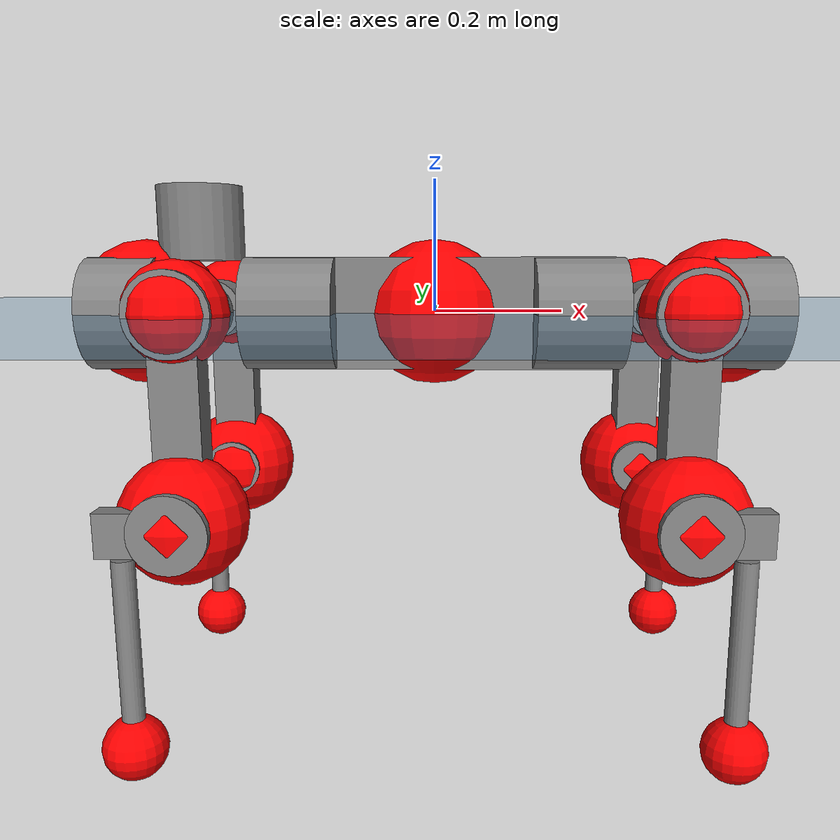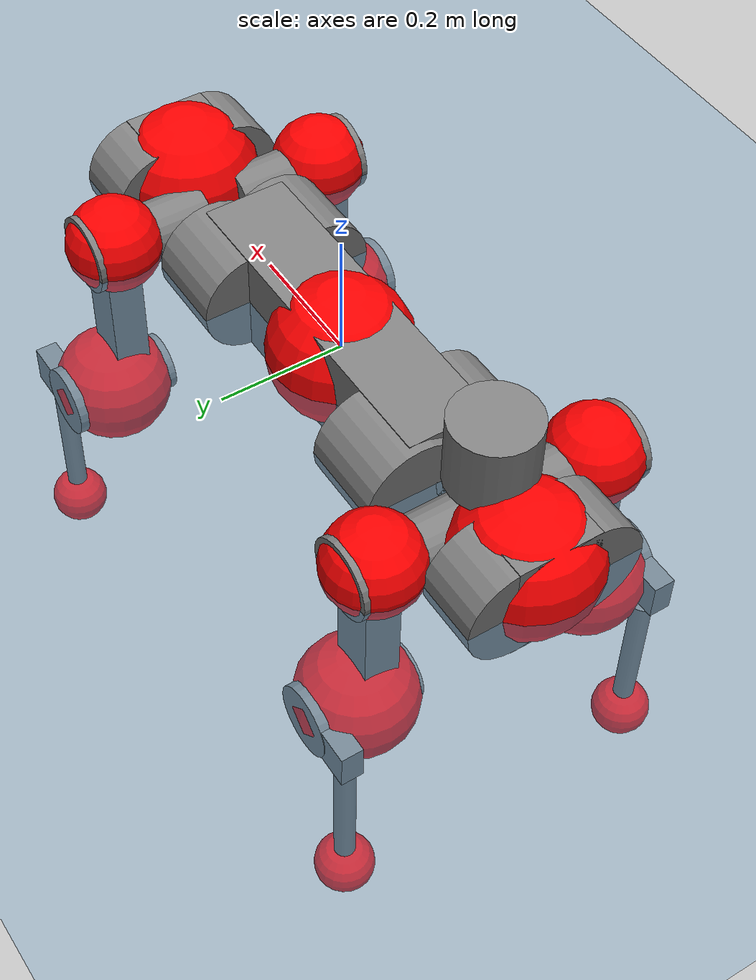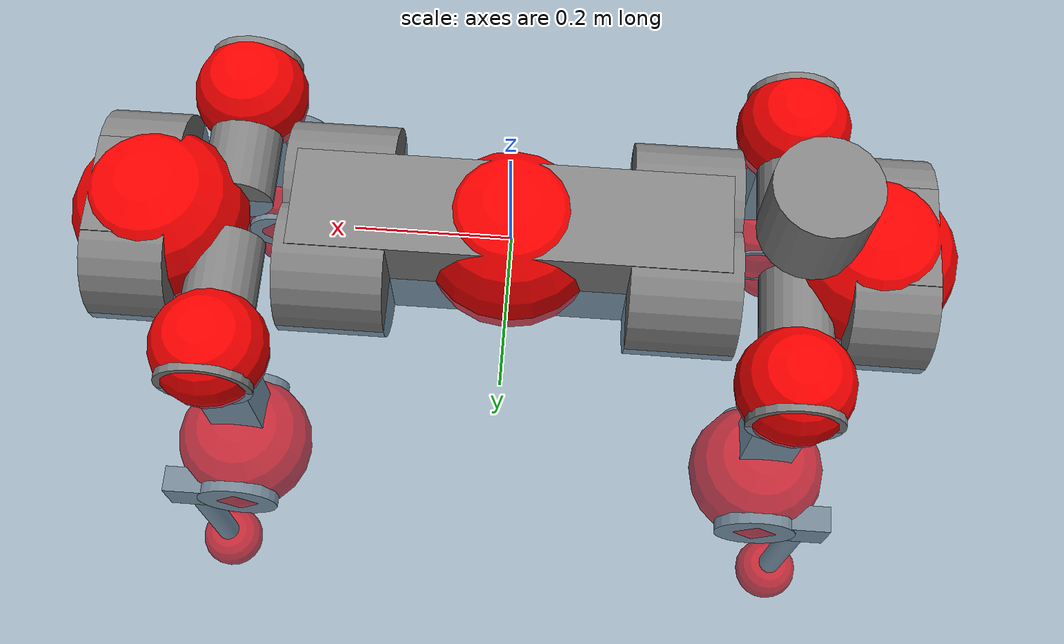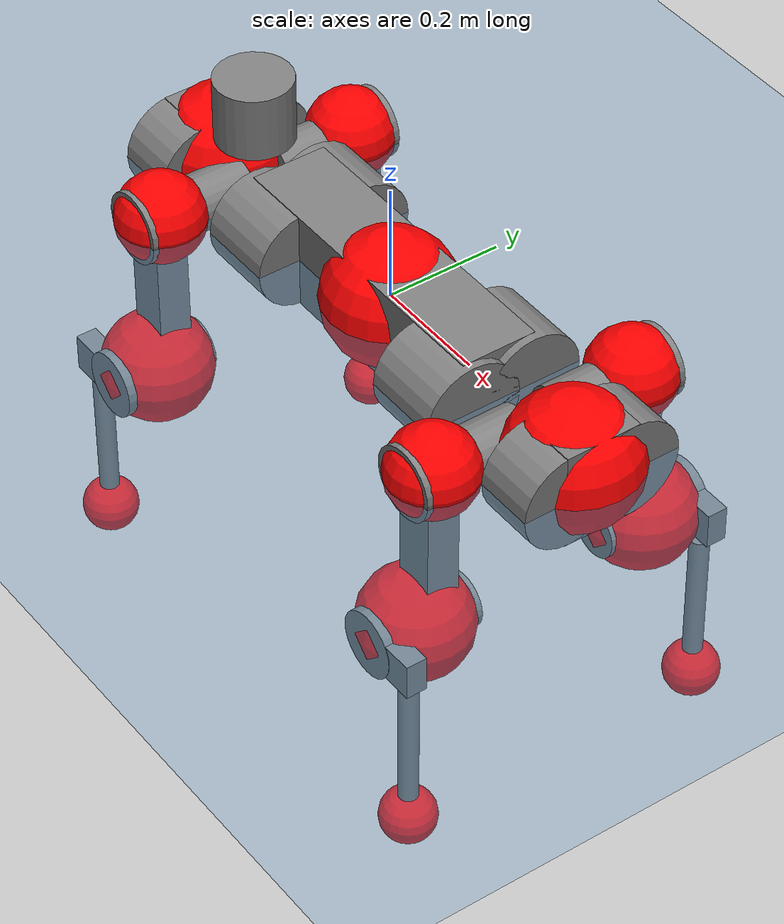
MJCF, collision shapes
<mujoco model="anymal_c">
  <compiler angle="radian" assetdir="assets" balanceinertia="true" inertiafromgeom="false"/>

  <option timestep="0.005" density="1.2" viscosity="2e-05"/>

  <size nkey="1"/>

  <visual>
    <quality shadowsize="8192"/>
    <map shadowclip="0.5"/>
  </visual>

  <default>
    <default class="/">
      <material specular="0" shininess="0.25"/>
      <geom contype="0" conaffinity="0" group="1" solref="-1000 -80"/>
      <site size="0.01 0.005 0.005" group="5"/>
      <general forcelimited="true" forcerange="-80 80" biastype="affine" gainprm="80" biasprm="0 -80 -2"/>
      <default class="anymal_c">
        <joint armature="0.01" damping="0.01" frictionloss="0.1"/>
        <default class="visual">
          <geom type="mesh" group="2"/>
          <default class="visual_zflip"/>
        </default>
        <default class="collision">
          <geom type="cylinder" group="3"/>
          <default class="foot">
            <geom size="0.03 0 0" type="sphere" condim="6" priority="1" friction="0.8 0.02 0.01" solimp="0.015 1 0.03"/>
          </default>
        </default>
      </default>
      <default class="reward_collision_sphere">
        <geom group="5" rgba="1 0 0 1"/>
      </default>
    </default>
  </default>

  <asset>
    <texture type="skybox" colorspace="auto" name="//unnamed_texture_0" builtin="gradient" rgb1="0.95 0.95 0.95" rgb2="0.95 0.95 0.95" width="100" height="600"/>
    <texture type="2d" colorspace="auto" name="texplane" builtin="checker" rgb1="0.345 0.575 0.748" rgb2="0.345 0.575 0.748" markrgb="1 1 1" width="512" height="512"/>
    <texture type="2d" colorspace="linear" name="base" file="base.png"/>
    <texture type="2d" colorspace="linear" name="top_shell" file="top_shell.png"/>
    <texture type="2d" colorspace="linear" name="bottom_shell" file="bottom_shell.png"/>
    <texture type="2d" colorspace="linear" name="remote" file="remote.png"/>
    <texture type="2d" colorspace="linear" name="hatch" file="hatch.png"/>
    <texture type="2d" colorspace="linear" name="handle" file="handle.png"/>
    <texture type="2d" colorspace="linear" name="face" file="face.png"/>
    <texture type="2d" colorspace="linear" name="battery" file="battery.png"/>
    <texture type="2d" colorspace="linear" name="lidar_cage" file="lidar_cage.png"/>
    <texture type="2d" colorspace="linear" name="depth_camera" file="depth_camera.png"/>
    <texture type="2d" colorspace="linear" name="wide_angle_camera" file="wide_angle_camera.png"/>
    <texture type="2d" colorspace="linear" name="lidar" file="lidar.png"/>
    <texture type="2d" colorspace="linear" name="drive" file="drive.png"/>
    <texture type="2d" colorspace="linear" name="hip_l" file="hip_l.png"/>
    <texture type="2d" colorspace="linear" name="shank_l" file="shank_l.png"/>
    <texture type="2d" colorspace="linear" name="foot" file="foot.png"/>
    <texture type="2d" colorspace="linear" name="thigh" file="thigh.png"/>
    <texture type="2d" colorspace="linear" name="shank_r" file="shank_r.png"/>
    <texture type="2d" colorspace="linear" name="hip_r" file="hip_r.png"/>
    <material name="MatPlane" class="/" texture="texplane" texuniform="true" texrepeat="2 2" specular="0.9" shininess="0.5"/>
    <material name="black_plastic" class="/" rgba="0.007 0.007 0.007 1"/>
    <material name="green" class="/" rgba="0.052 0.178 0.033 1"/>
    <material name="red" class="/" rgba="0.178 0.006 0.005 1"/>
    <material name="yellow" class="/" rgba="0.178 0.119 0.006 1"/>
    <material name="lwl" class="/" rgba="0.8 0.8 0.8 1"/>
    <material name="base" class="/" texture="base"/>
    <material name="top_shell" class="/" texture="top_shell"/>
    <material name="bottom_shell" class="/" texture="bottom_shell"/>
    <material name="hip_l" class="/" texture="hip_l"/>
    <material name="thigh" class="/" texture="thigh"/>
    <material name="shank_l" class="/" texture="shank_l"/>
    <material name="foot" class="/" texture="foot"/>
    <material name="hip_r" class="/" texture="hip_r"/>
    <material name="shank" class="/" texture="shank_r"/>
    <material name="hatch" class="/" texture="hatch"/>
    <material name="remote" class="/" texture="remote"/>
    <material name="handle" class="/" texture="handle"/>
    <material name="face" class="/" texture="face"/>
    <material name="depth_camera" class="/" texture="depth_camera"/>
    <material name="wide_angle_camera" class="/" texture="wide_angle_camera"/>
    <material name="battery" class="/" texture="battery"/>
    <material name="lidar_cage" class="/" texture="lidar_cage"/>
    <material name="lidar" class="/" texture="lidar"/>
    <material name="drive" class="/" texture="drive"/>
    <mesh name="base_0" class="/" file="base_0.obj"/>
    <mesh name="base_1" class="/" file="base_1.obj"/>
    <mesh name="base_2" class="/" file="base_2.obj"/>
    <mesh name="base_3" class="/" file="base_3.obj"/>
    <mesh name="base_4" class="/" file="base_4.obj"/>
    <mesh name="base_5" class="/" file="base_5.obj"/>
    <mesh name="top_shell" class="/" file="top_shell.obj"/>
    <mesh name="bottom_shell" class="/" file="bottom_shell.obj"/>
    <mesh name="remote" class="/" file="remote.obj"/>
    <mesh name="handle" class="/" file="handle.obj"/>
    <mesh name="face" class="/" file="face.obj"/>
    <mesh name="wide_angle_camera" class="/" file="wide_angle_camera.obj"/>
    <mesh name="depth_camera" class="/" file="depth_camera.obj"/>
    <mesh name="battery" class="/" file="battery.obj"/>
    <mesh name="lidar_cage" class="/" file="lidar_cage.obj"/>
    <mesh name="lidar" class="/" file="lidar.obj"/>
    <mesh name="drive" class="/" file="drive.obj"/>
    <mesh name="hip_l" class="/" file="hip_l.obj"/>
    <mesh name="thigh" class="/" file="thigh.obj"/>
    <mesh name="shank_l" class="/" file="shank_l.obj"/>
    <mesh name="foot" class="/" file="foot.obj"/>
    <mesh name="hip_r" class="/" file="hip_r.obj"/>
    <mesh name="hatch" class="/" file="hatch.obj"/>
    <mesh name="shank_r" class="/" file="shank_r.obj"/>
  </asset>

  <worldbody>
    <geom name="floor" class="/" size="100 100 0.125" type="plane" group="0" material="MatPlane"/>
    <light name="toplight_shadow" class="/" pos="0 0 5" dir="0.0990148 0.0990148 -0.990148" type="directional" ambient="0.04 0.04 0.04" diffuse="0.55 0.55 0.55" specular="0.12 0.12 0.12"/>
    <light name="toplight_fill" class="/" pos="0 0 5" dir="0.0990148 0.0990148 -0.990148" type="directional" castshadow="false" ambient="0.04 0.04 0.04" diffuse="0.3 0.3 0.3" specular="0.08 0.08 0.08"/>
    <body name="trunk" childclass="anymal_c" pos="-0.000361323 0.000201155 -0.00224797" quat="1 0.000294646 -0.000118568 7.80357e-05">
      <inertial pos="-0.000287553 -0.00292765 0.0499187" quat="0.501477 0.498128 0.500694 0.499695" mass="15.9349" diaginertia="0.668155 0.205484 0.250764"/>
      <joint name="//unnamed_joint_0" type="free" armature="0" damping="0" frictionloss="0"/>
      <geom name="//unnamed_geom_1" class="visual" material="green" mesh="base_0"/>
      <geom name="//unnamed_geom_2" class="visual" material="yellow" mesh="base_1"/>
      <geom name="//unnamed_geom_3" class="visual" material="red" mesh="base_2"/>
      <geom name="//unnamed_geom_4" class="visual" material="black_plastic" mesh="base_3"/>
      <geom name="//unnamed_geom_5" class="visual" material="lwl" mesh="base_4"/>
      <geom name="//unnamed_geom_6" class="visual" material="base" mesh="base_5"/>
      <geom name="trunk_1" class="collision" size="0.272447 0.065763 0.0845525" type="box"/>
      <geom name="trunk_2" class="collision" size="0.0845525 0.0681117" pos="0.218144 0.0557141 0" quat="0.707107 0 0.707107 0"/>
      <geom name="trunk_3" class="collision" size="0.0845525 0.0681117" pos="-0.218144 0.0557141 0" quat="0.707107 0 0.707107 0"/>
      <geom name="trunk_4" class="collision" size="0.0845525 0.0681117" pos="0.218144 -0.0557141 0" quat="0.707107 0 0.707107 0"/>
      <geom name="trunk_5" class="collision" size="0.0845525 0.0681117" pos="-0.218144 -0.0557141 0" quat="0.707107 0 0.707107 0"/>
      <geom name="//unnamed_geom_12" class="visual" material="top_shell" mesh="top_shell"/>
      <geom name="//unnamed_geom_13" class="visual" material="bottom_shell" mesh="bottom_shell"/>
      <geom name="//unnamed_geom_14" class="visual" material="remote" mesh="remote"/>
      <geom name="//unnamed_geom_15" class="visual" material="handle" mesh="handle"/>
      <geom name="//unnamed_geom_16" class="visual" pos="0.415727 0 0" quat="1 0 0 0" material="face" mesh="face"/>
      <geom name="trunk_6" class="collision" size="0.0516709 0.065763 0.0845525" pos="0.47089 0 0" type="box"/>
      <geom name="//unnamed_geom_18" class="collision" size="0.0845525 0.0516709" pos="0.47089 0.0557141 0" quat="0.707107 0 0.707107 0"/>
      <geom name="//unnamed_geom_19" class="collision" size="0.0845525 0.0516709" pos="0.47089 -0.0557141 0" quat="0.707107 0 0.707107 0"/>
      <geom name="//unnamed_geom_20" class="visual" pos="0.463018 0 -0.0298965" quat="0.965926 0 0.258819 0" material="depth_camera" mesh="depth_camera"/>
      <geom name="//unnamed_geom_21" class="visual" pos="0.514519 0 0.0152625" material="wide_angle_camera" mesh="wide_angle_camera"/>
      <geom name="//unnamed_geom_22" class="visual_zflip" pos="-0.415727 0 0" quat="0 0 0 1" material="face" mesh="face"/>
      <geom name="trunk_7" class="collision" size="0.0516709 0.065763 0.0845525" pos="-0.47089 0 0" quat="0 0 0 1" type="box"/>
      <geom name="//unnamed_geom_24" class="collision" size="0.0845525 0.0516709" pos="-0.47089 -0.0557141 0" quat="0 -0.707107 0 0.707107"/>
      <geom name="//unnamed_geom_25" class="collision" size="0.0845525 0.0516709" pos="-0.47089 0.0557141 0" quat="0 -0.707107 0 0.707107"/>
      <geom name="//unnamed_geom_26" class="visual" pos="-0.463018 0 -0.0298965" quat="0 -0.258819 0 0.965926" material="depth_camera" mesh="depth_camera"/>
      <geom name="//unnamed_geom_27" class="visual_zflip" pos="-0.514519 0 0.0152625" quat="0 0 0 1" material="wide_angle_camera" mesh="wide_angle_camera"/>
      <geom name="//unnamed_geom_28" class="visual" material="battery" mesh="battery"/>
      <geom name="//unnamed_geom_29" class="visual" pos="0 0.0581396 0.0294916" quat="0.683013 -0.183013 0.183013 0.683013" material="depth_camera" mesh="depth_camera"/>
      <geom name="//unnamed_geom_30" class="visual" pos="0 -0.0581396 0.0294916" quat="0.683013 0.183013 0.183013 -0.683013" material="depth_camera" mesh="depth_camera"/>
      <geom name="//unnamed_geom_31" class="visual" pos="-0.365078 0 0.0749361" quat="1 0 0 0" material="lidar_cage" mesh="lidar_cage"/>
      <geom name="trunk_8" class="collision" size="0.065763 0.0563683" pos="-0.365078 0 0.136108"/>
      <geom name="//unnamed_geom_33" class="visual" pos="-0.365078 -8.13423e-05 0.144978" quat="0.707107 0 0 -0.707107" material="lidar" mesh="lidar"/>
      <geom name="//unnamed_geom_34" class="visual" pos="0.300788 0.0828547 -3.8575e-09" quat="0.258819 0.965926 0 0" material="drive" mesh="drive"/>
      <geom name="//unnamed_geom_35" class="visual" pos="0.300788 -0.0828547 3.8575e-09" quat="0.258819 -0.965926 0 0" material="drive" mesh="drive"/>
      <geom name="//unnamed_geom_36" class="visual" pos="-0.300788 0.0828547 3.8575e-09" quat="0 0 0.965926 -0.258819" material="drive" mesh="drive"/>
      <geom name="//unnamed_geom_37" class="visual" pos="-0.300788 -0.0828547 -3.8575e-09" quat="0 0 -0.965926 -0.258819" material="drive" mesh="drive"/>
      <geom name="//unnamed_geom_38" class="visual" pos="0.116343 0 0.0744263" quat="1 0 0 0" material="hatch" mesh="hatch"/>
      <geom name="//unnamed_geom_39" class="reward_collision_sphere" size="0.112737"/>
      <geom name="//unnamed_geom_40" class="reward_collision_sphere" size="0.112737" pos="0.451332 0 0"/>
      <geom name="//unnamed_geom_41" class="reward_collision_sphere" size="0.112737" pos="-0.451332 0 0"/>
      <site name="imu" pos="0.236773 0.0112047 0.0609796" size="0.00939472"/>
      <camera name="track" pos="0 -1.59183 0" quat="0.707107 0.707107 0 0" mode="trackcom"/>
      <camera name="ego_camera" pos="0.451332 0 -0.0407815" quat="-0.5 -0.5 0.5 0.5"/>
      <body name="LF_HIP" pos="0.300301 0.0839842 0.00106311" quat="0.25851 0.966009 -0.000347245 0.000356866">
        <inertial pos="0.0596252 -0.0128903 -0.00817639" quat="-0.135797 0.708284 -0.132387 0.679976" mass="2.21506" diaginertia="0.00571197 0.00155633 0.00358993"/>
        <joint name="LF_HAA" pos="0 0 0" axis="0.999881 0.013529 0.00739037" range="-0.718405 0.514598" armature="0.0106557" damping="0" frictionloss="0.0989977"/>
        <geom name="//unnamed_geom_42" class="visual" pos="0 -0.000226919 3.72713e-05" quat="0.258819 -0.965926 0 0" material="hip_l" mesh="hip_l"/>
        <geom name="//unnamed_geom_43" class="visual" pos="0.0600774 -0.0701499 -0.0421551" quat="0.183013 -0.683013 0.683013 0.183013" material="drive" mesh="drive"/>
        <geom name="//unnamed_geom_44" class="collision" size="0.0469736 0.065763" pos="0.0600774 -0.009519 -0.00703991" quat="-0.353553 -0.612372 0.612372 -0.353553"/>
        <body name="LF_THIGH" pos="0.0601679 -0.0569622 -0.044403" quat="0.183194 -0.682913 0.683103 0.182866">
          <inertial pos="0.031876 3.97039e-05 -0.247708" quat="0.993297 -0.00819412 -0.0786408 0.0843217" mass="2.60613" diaginertia="0.0296805 0.00954989 0.0046771"/>
          <joint name="LF_HFE" pos="0 0 0" axis="0.999878 -0.00213592 0.0154583" range="-3.1292 3.11581" armature="0.00894906" damping="0.0116316" frictionloss="0.0810398"/>
          <geom name="//unnamed_geom_45" class="visual" pos="0.00411938 6.49117e-06 0" quat="0.707107 0 0 -0.707107" material="thigh" mesh="thigh"/>
          <geom name="//unnamed_geom_46" class="collision" size="0.0610657 0.0375789" pos="0.0401184 0 0" quat="0.5 0.5 -0.5 -0.5"/>
          <geom name="//unnamed_geom_47" class="collision" size="0.0352302 0.0281842 0.132761" pos="0.0300888 0 -0.144075" quat="0.707107 0 0 -0.707107" type="box"/>
          <geom name="//unnamed_geom_48" class="visual" pos="0.100597 0 -0.290568" quat="1 0 0 0" material="drive" mesh="drive"/>
          <geom name="//unnamed_geom_49" class="collision" size="0.0469736 0.065763" pos="0.0303897 0 -0.290568" quat="0.707107 0 0.707107 0"/>
          <geom name="//unnamed_geom_50" class="reward_collision_sphere" size="0.0751577" pos="0.025074 0 0"/>
          <body name="LF_SHANK" pos="0.103805 -0.00323506 -0.293371" quat="0.999999 -0.000281217 -0.00124957 0.000516847">
            <inertial pos="0.00644986 -0.0485915 -0.0813836" quat="0.993015 -0.115421 -0.00500179 -0.0239546" mass="0.476994" diaginertia="0.0101189 0.00293319 0.00122733"/>
            <joint name="LF_KFE" pos="0 0 0" axis="1 -0.000365009 -2.30143e-05" range="-3.18309 3.14022" armature="0.00994867" damping="0" frictionloss="0.102945"/>
            <geom name="//unnamed_geom_51" class="visual" pos="0.00134324 0.00716222 0" quat="0.707107 0 0 -0.707107" material="shank_l" mesh="shank_l"/>
            <geom name="LF_kfe_act" class="collision" size="0.0563683 0.0187894" pos="0.0200592 0 0" quat="0.5 0.5 -0.5 -0.5"/>
            <geom name="//unnamed_geom_53" class="collision" size="0.0540187 0.0317072 0.01785" pos="0.0200592 -0.0457644 0" quat="0.5 0.5 -0.5 -0.5" type="box"/>
            <geom name="//unnamed_geom_54" class="visual" pos="0.0130883 -0.0676927 -0.344573" quat="0.382683 0 0 -0.92388" material="foot" mesh="foot"/>
            <geom name="LF_calf" class="collision" size="0.0164408 0.132702" pos="0.0130886 -0.0700008 -0.172287" quat="0.707107 0 0 -0.707107"/>
            <geom name="LF_foot" class="foot" size="0.0297555" pos="0.0130886 -0.0700008 -0.321634" quat="0.707107 0 0 -0.707107"/>
            <geom name="//unnamed_geom_57" class="reward_collision_sphere" size="0.0939472" pos="-0.050148 0 0"/>
            <geom name="//unnamed_geom_58" class="reward_collision_sphere" size="0.0469736" pos="0.0130886 -0.0700008 -0.321634"/>
            <site name="LF_foot" class="foot" pos="0.0130886 -0.0700008 -0.321634" quat="0.707107 0 0 -0.707107" size="0.00939472"/>
          </body>
        </body>
      </body>
      <body name="RF_HIP" pos="0.299615 -0.084248 -0.000313339" quat="0.258872 -0.965912 -8.64658e-06 -0.000151352">
        <inertial pos="0.059693 0.0131832 -0.00883808" quat="0.136117 0.67891 0.12619 0.710373" mass="2.38496" diaginertia="0.00603779 0.00163862 0.00371729"/>
        <joint name="RF_HAA" pos="0 0 0" axis="0.999998 -0.0010669 0.00162936" range="-0.547548 0.702994" armature="0.00813574" damping="0.00859412" frictionloss="0.0809674"/>
        <geom name="//unnamed_geom_59" class="visual" pos="0 0.000226918 3.72712e-05" quat="0.258819 0.965926 0 0" material="hip_r" mesh="hip_r"/>
        <geom name="//unnamed_geom_60" class="visual" pos="0.0600774 0.0701499 -0.0421551" quat="0.183013 0.683013 0.683013 -0.183013" material="drive" mesh="drive"/>
        <geom name="//unnamed_geom_61" class="collision" size="0.0469736 0.065763" pos="0.0600774 0.009519 -0.00703991" quat="-0.353553 0.612372 0.612372 0.353553"/>
        <body name="RF_THIGH" pos="0.0600128 0.0606827 -0.0442843" quat="0.18294 0.683294 0.682735 -0.18307">
          <inertial pos="0.0309491 -0.00110561 -0.249658" quat="0.993365 -0.00677467 -0.0859307 0.0761342" mass="2.382" diaginertia="0.0295681 0.00946859 0.00450836"/>
          <joint name="RF_HFE" pos="0 0 0" axis="0.999955 -0.00917004 -0.00222937" stiffness="0.00590033" range="-3.09109 3.18303" armature="0.00944332" damping="0" frictionloss="0.104744"/>
          <geom name="//unnamed_geom_62" class="visual" pos="0.00411938 6.49117e-06 0" quat="0.707107 0 0 -0.707107" material="thigh" mesh="thigh"/>
          <geom name="//unnamed_geom_63" class="collision" size="0.0610657 0.0375789" pos="0.0401184 0 0" quat="0.5 0.5 0.5 0.5"/>
          <geom name="//unnamed_geom_64" class="collision" size="0.0352302 0.0281842 0.132761" pos="0.0300888 0 -0.144075" quat="0.707107 0 0 0.707107" type="box"/>
          <geom name="//unnamed_geom_65" class="visual" pos="0.100597 0 -0.290568" quat="1 0 0 0" material="drive" mesh="drive"/>
          <geom name="//unnamed_geom_66" class="collision" size="0.0469736 0.065763" pos="0.0303897 0 -0.290568" quat="0.707107 0 0.707107 0"/>
          <geom name="//unnamed_geom_67" class="reward_collision_sphere" size="0.0751577" pos="0.025074 0 0"/>
          <body name="RF_SHANK" pos="0.102776 -0.00229635 -0.290154" quat="1 -5.49024e-06 -4.12378e-05 1.42785e-05">
            <inertial pos="0.005673 0.0485761 -0.0792609" quat="0.992709 0.116086 0.00310844 0.0322926" mass="0.493561" diaginertia="0.00996968 0.00285117 0.00123501"/>
            <joint name="RF_KFE" pos="0 0 0" axis="0.999999 -0.000172827 0.00119447" range="-3.16246 3.17329" armature="0.00961004" damping="0.00428622" frictionloss="0.0814552"/>
            <geom name="//unnamed_geom_68" class="visual" pos="0.00134323 -0.0071622 0" quat="0.707107 0 0 0.707107" material="shank" mesh="shank_r"/>
            <geom name="RF_kfe_act" class="collision" size="0.0563683 0.0187894" pos="0.0200592 0 0" quat="0.5 0.5 0.5 0.5"/>
            <geom name="//unnamed_geom_70" class="collision" size="0.0540187 0.0317072 0.01785" pos="0.0200592 0.0457644 0" quat="0.5 0.5 0.5 0.5" type="box"/>
            <geom name="//unnamed_geom_71" class="visual" pos="0.013089 0.0676927 -0.344573" quat="0.382683 0 0 0.92388" material="foot" mesh="foot"/>
            <geom name="RF_calf" class="collision" size="0.0164408 0.132702" pos="0.0130886 0.0700008 -0.172287" quat="0.707107 0 0 0.707107"/>
            <geom name="RF_foot" class="foot" size="0.0266245" pos="0.0130886 0.0700008 -0.321634" quat="0.707107 0 0 0.707107"/>
            <geom name="//unnamed_geom_74" class="reward_collision_sphere" size="0.0939472" pos="-0.050148 0 0"/>
            <geom name="//unnamed_geom_75" class="reward_collision_sphere" size="0.0469736" pos="0.0130886 0.0700008 -0.321634"/>
            <site name="RF_foot" class="foot" pos="0.0130886 0.0700008 -0.321634" quat="0.707107 0 0 0.707107" size="0.00939472"/>
          </body>
        </body>
      </body>
      <body name="LH_HIP" pos="-0.302972 0.0837209 0.000817721" quat="-0.000232625 -0.000167591 0.965901 -0.25891">
        <inertial pos="0.0576713 0.0146659 -0.00828475" quat="0.138884 0.678143 0.136003 0.708757" mass="2.2955" diaginertia="0.00575712 0.00156792 0.00338008"/>
        <joint name="LH_HAA" pos="0 0 0" axis="1 -0.000992993 6.15709e-05" range="-0.495159 0.677079" armature="0.0079538" damping="0.00456317" frictionloss="0.0920888"/>
        <geom name="//unnamed_geom_76" class="visual" pos="0 0.000226918 3.72712e-05" quat="-0.258819 -0.965926 0 0" material="hip_r" mesh="hip_r"/>
        <geom name="//unnamed_geom_77" class="visual" pos="0.0600774 0.0701499 -0.0421551" quat="0.183013 0.683013 0.683013 -0.183013" material="drive" mesh="drive"/>
        <geom name="//unnamed_geom_78" class="collision" size="0.0469736 0.065763" pos="0.0600774 0.009519 -0.00703991" quat="-0.353553 0.612372 0.612372 0.353553"/>
        <body name="LH_THIGH" pos="0.0572092 0.0552661 -0.042564" quat="0.183071 0.682945 0.68309 -0.182919">
          <inertial pos="0.0308877 0.00251764 -0.249253" quat="0.992817 -0.00499196 -0.0812314 0.0877017" mass="2.54311" diaginertia="0.0305613 0.00932092 0.00456934"/>
          <joint name="LH_HFE" pos="0 0 0" axis="0.999926 -0.00670857 -0.0101312" stiffness="0.00343078" range="-3.14415 3.15186" armature="0.00886922" damping="0.00500541" frictionloss="0.0933232"/>
          <geom name="//unnamed_geom_79" class="visual" pos="0.00411938 6.49117e-06 0" quat="0.707107 0 0 -0.707107" material="thigh" mesh="thigh"/>
          <geom name="//unnamed_geom_80" class="collision" size="0.0610657 0.0375789" pos="0.0401184 0 0" quat="0.5 0.5 -0.5 -0.5"/>
          <geom name="//unnamed_geom_81" class="collision" size="0.0352302 0.0281842 0.132761" pos="0.0300888 0 -0.144075" quat="0.707107 0 0 -0.707107" type="box"/>
          <geom name="//unnamed_geom_82" class="visual" pos="0.100597 0 -0.290568" quat="1 0 0 0" material="drive" mesh="drive"/>
          <geom name="//unnamed_geom_83" class="collision" size="0.0469736 0.065763" pos="0.0303897 0 -0.290568" quat="0.707107 0 0.707107 0"/>
          <geom name="//unnamed_geom_84" class="reward_collision_sphere" size="0.0751577" pos="0.025074 0 0"/>
          <body name="LH_SHANK" pos="0.0983561 -0.000443874 -0.291221" quat="1 -0.000189443 4.39748e-05 -0.000296078">
            <inertial pos="0.00549524 0.0486325 -0.082461" quat="0.992632 0.115982 -0.00918336 0.033842" mass="0.487083" diaginertia="0.010302 0.0029177 0.00119201"/>
            <joint name="LH_KFE" pos="0 0 0" axis="0.999803 -0.000328396 0.0198462" range="-3.14763 3.13585" armature="0.00829725" damping="0.0056306" frictionloss="0.103545"/>
            <geom name="//unnamed_geom_85" class="visual" pos="0.00134323 -0.0071622 0" quat="-0.707107 0 0 -0.707107" material="shank" mesh="shank_r"/>
            <geom name="LH_kfe_act" class="collision" size="0.0563683 0.0187894" pos="0.0200592 0 0" quat="0.5 0.5 -0.5 -0.5"/>
            <geom name="//unnamed_geom_87" class="collision" size="0.0540187 0.0317072 0.01785" pos="0.0200592 0.0457644 0" quat="0.5 0.5 -0.5 -0.5" type="box"/>
            <geom name="//unnamed_geom_88" class="visual" pos="0.013089 0.0676927 -0.344573" quat="-0.382683 0 0 -0.92388" material="foot" mesh="foot"/>
            <geom name="LH_calf" class="collision" size="0.0164408 0.132702" pos="0.0130886 0.0700008 -0.172287" quat="0.707107 0 0 -0.707107"/>
            <geom name="LH_foot" class="foot" size="0.0335403" pos="0.0130886 0.0700008 -0.321634" quat="0.707107 0 0 -0.707107"/>
            <geom name="//unnamed_geom_91" class="reward_collision_sphere" size="0.0939472" pos="-0.050148 0 0"/>
            <geom name="//unnamed_geom_92" class="reward_collision_sphere" size="0.0469736" pos="0.0130886 0.0700008 -0.321634"/>
            <site name="LH_foot" class="foot" pos="0.0130886 0.0700008 -0.321634" quat="0.707107 0 0 -0.707107" size="0.00939472"/>
          </body>
        </body>
      </body>
      <body name="RH_HIP" pos="-0.300366 -0.086024 -8.01537e-05" quat="-0.000334798 -0.000210066 -0.965611 -0.25999">
        <inertial pos="0.0540826 -0.0126768 -0.00596985" quat="-0.12805 0.707301 -0.13454 0.682076" mass="2.2702" diaginertia="0.00585955 0.00155164 0.00345728"/>
        <joint name="RH_HAA" pos="0 0 0" axis="0.999999 -0.000985828 0.00136981" range="-0.77808 0.545037" armature="0.00941123" damping="0.000404996" frictionloss="0.0925664"/>
        <geom name="//unnamed_geom_93" class="visual" pos="0 -0.000226919 3.72713e-05" quat="-0.258819 0.965926 0 0" material="hip_l" mesh="hip_l"/>
        <geom name="//unnamed_geom_94" class="visual" pos="0.0600774 -0.0701499 -0.0421551" quat="-0.183013 0.683013 -0.683013 -0.183013" material="drive" mesh="drive"/>
        <geom name="//unnamed_geom_95" class="collision" size="0.0469736 0.065763" pos="0.0600774 -0.009519 -0.00703991" quat="0.353553 0.612372 -0.612372 0.353553"/>
        <body name="RH_THIGH" pos="0.0597479 -0.0587015 -0.0410181" quat="-0.183157 0.683252 -0.682801 -0.182764">
          <inertial pos="0.0336301 0.000926227 -0.251359" quat="0.993127 -0.00536344 -0.0804248 0.0848641" mass="2.38797" diaginertia="0.0287574 0.00931615 0.00441284"/>
          <joint name="RH_HFE" pos="0 0 0" axis="0.999944 -0.0105739 0.000861313" stiffness="0.0014804" range="-3.13928 3.13713" armature="0.00924084" damping="0.00831805" frictionloss="0.0930508"/>
          <geom name="//unnamed_geom_96" class="visual" pos="0.00411938 6.49117e-06 0" quat="0.707107 0 0 -0.707107" material="thigh" mesh="thigh"/>
          <geom name="//unnamed_geom_97" class="collision" size="0.0610657 0.0375789" pos="0.0401184 0 0" quat="0.5 0.5 0.5 0.5"/>
          <geom name="//unnamed_geom_98" class="collision" size="0.0352302 0.0281842 0.132761" pos="0.0300888 0 -0.144075" quat="0.707107 0 0 0.707107" type="box"/>
          <geom name="//unnamed_geom_99" class="visual" pos="0.100597 0 -0.290568" quat="1 0 0 0" material="drive" mesh="drive"/>
          <geom name="//unnamed_geom_100" class="collision" size="0.0469736 0.065763" pos="0.0303897 0 -0.290568" quat="0.707107 0 0.707107 0"/>
          <geom name="//unnamed_geom_101" class="reward_collision_sphere" size="0.0751577" pos="0.025074 0 0"/>
          <body name="RH_SHANK" pos="0.0978619 0.00157428 -0.290909" quat="1 0.000140223 -0.000319446 3.74378e-05">
            <inertial pos="0.0054851 -0.0487333 -0.0821244" quat="0.992881 -0.114669 -0.0140956 -0.0289773" mass="0.482411" diaginertia="0.0101008 0.00304288 0.00123696"/>
            <joint name="RH_KFE" pos="0 0 0" axis="0.999988 0.000768929 0.00484866" stiffness="0.00716036" range="-3.11167 3.14391" armature="0.00813285" damping="0.00470183" frictionloss="0.0940341"/>
            <geom name="//unnamed_geom_102" class="visual" pos="0.00134324 0.00716222 0" quat="0.707107 0 0 -0.707107" material="shank_l" mesh="shank_l"/>
            <geom name="RH_kfe_act" class="collision" size="0.0563683 0.0187894" pos="0.0200592 0 0" quat="0.5 0.5 0.5 0.5"/>
            <geom name="//unnamed_geom_104" class="collision" size="0.0540187 0.0317072 0.01785" pos="0.0200592 -0.0457644 0" quat="0.5 0.5 0.5 0.5" type="box"/>
            <geom name="//unnamed_geom_105" class="visual" pos="0.0130883 -0.0676927 -0.344573" quat="0.382683 0 0 -0.92388" material="foot" mesh="foot"/>
            <geom name="RH_calf" class="collision" size="0.0164408 0.132702" pos="0.0130886 -0.0700008 -0.172287" quat="0.707107 0 0 0.707107"/>
            <geom name="RH_foot" class="foot" size="0.0234564" pos="0.0130886 -0.0700008 -0.321634" quat="0.707107 0 0 0.707107"/>
            <geom name="//unnamed_geom_108" class="reward_collision_sphere" size="0.0939472" pos="-0.050148 0 0"/>
            <geom name="//unnamed_geom_109" class="reward_collision_sphere" size="0.0469736" pos="0.0130886 -0.0700008 -0.321634"/>
            <site name="RH_foot" class="foot" pos="0.0130886 -0.0700008 -0.321634" quat="0.707107 0 0 0.707107" size="0.00939472"/>
          </body>
        </body>
      </body>
    </body>
  </worldbody>

  <contact>
    <pair class="/" geom1="floor" geom2="LF_foot" name="//unnamed_contact_0"/>
    <pair class="/" geom1="floor" geom2="RF_foot" name="//unnamed_contact_1"/>
    <pair class="/" geom1="floor" geom2="LH_foot" name="//unnamed_contact_2"/>
    <pair class="/" geom1="floor" geom2="RH_foot" name="//unnamed_contact_3"/>
  </contact>

  <actuator>
    <general name="LF_HAA" class="/" joint="LF_HAA" forcerange="-78.6714 78.6714" gainprm="78.8725" biasprm="0 -78.8725 -1.80237"/>
    <general name="LF_HFE" class="/" joint="LF_HFE" forcerange="-71.3969 71.3969" gainprm="78.8725" biasprm="0 -78.8725 -1.80237"/>
    <general name="LF_KFE" class="/" joint="LF_KFE" forcerange="-77.5137 77.5137" gainprm="78.8725" biasprm="0 -78.8725 -1.80237"/>
    <general name="RF_HAA" class="/" joint="RF_HAA" forcerange="-70.9629 70.9629" gainprm="78.8725" biasprm="0 -78.8725 -1.80237"/>
    <general name="RF_HFE" class="/" joint="RF_HFE" forcerange="-80.0475 80.0475" gainprm="78.8725" biasprm="0 -78.8725 -1.80237"/>
    <general name="RF_KFE" class="/" joint="RF_KFE" forcerange="-67.8164 67.8164" gainprm="78.8725" biasprm="0 -78.8725 -1.80237"/>
    <general name="LH_HAA" class="/" joint="LH_HAA" forcerange="-75.2398 75.2398" gainprm="78.8725" biasprm="0 -78.8725 -1.80237"/>
    <general name="LH_HFE" class="/" joint="LH_HFE" forcerange="-67.9318 67.9318" gainprm="78.8725" biasprm="0 -78.8725 -1.80237"/>
    <general name="LH_KFE" class="/" joint="LH_KFE" forcerange="-77.8327 77.8327" gainprm="78.8725" biasprm="0 -78.8725 -1.80237"/>
    <general name="RH_HAA" class="/" joint="RH_HAA" forcerange="-77.1311 77.1311" gainprm="78.8725" biasprm="0 -78.8725 -1.80237"/>
    <general name="RH_HFE" class="/" joint="RH_HFE" forcerange="-68.2759 68.2759" gainprm="78.8725" biasprm="0 -78.8725 -1.80237"/>
    <general name="RH_KFE" class="/" joint="RH_KFE" forcerange="-83.111 83.111" gainprm="78.8725" biasprm="0 -78.8725 -1.80237"/>
  </actuator>

  <sensor>
    <gyro site="imu" name="imu_angular_velocity"/>
    <velocimeter site="imu" name="imu_linear_velocity"/>
    <framelinvel objtype="site" objname="LF_foot" name="LF_foot_global_linear_velocity"/>
    <framelinvel objtype="site" objname="RF_foot" name="RF_foot_global_linear_velocity"/>
    <framelinvel objtype="site" objname="LH_foot" name="LH_foot_global_linear_velocity"/>
    <framelinvel objtype="site" objname="RH_foot" name="RH_foot_global_linear_velocity"/>
  </sensor>

  <keyframe>
    <key name="home" qpos="0 0 0.55 1 0 0 0 0 0.4 -0.8 0 -0.4 0.8 0 -0.4 0.8 0 0.4 -0.8"/>
  </keyframe>
</mujoco>
